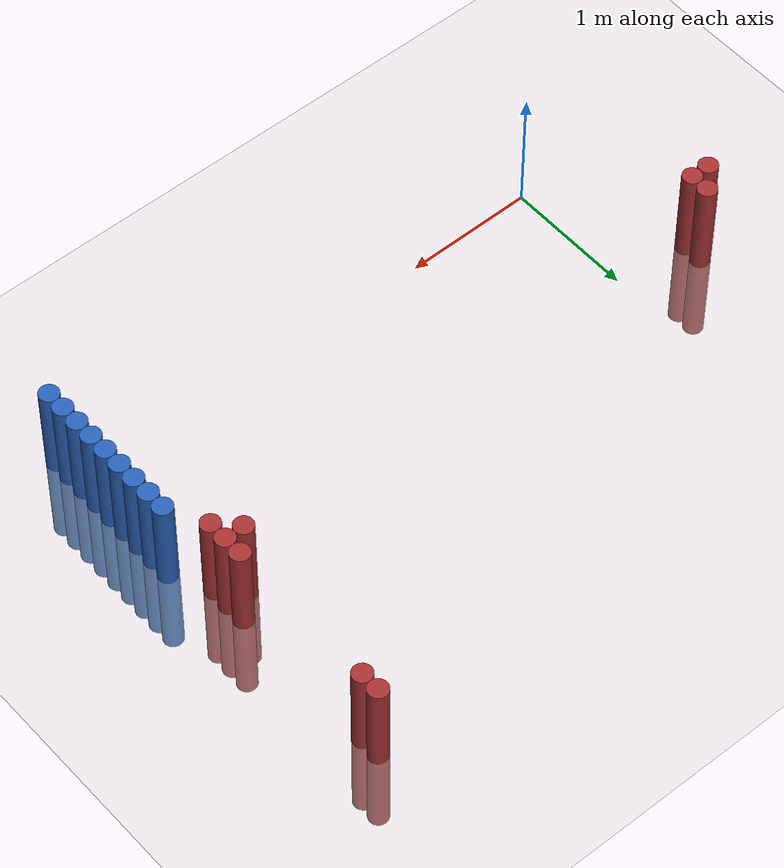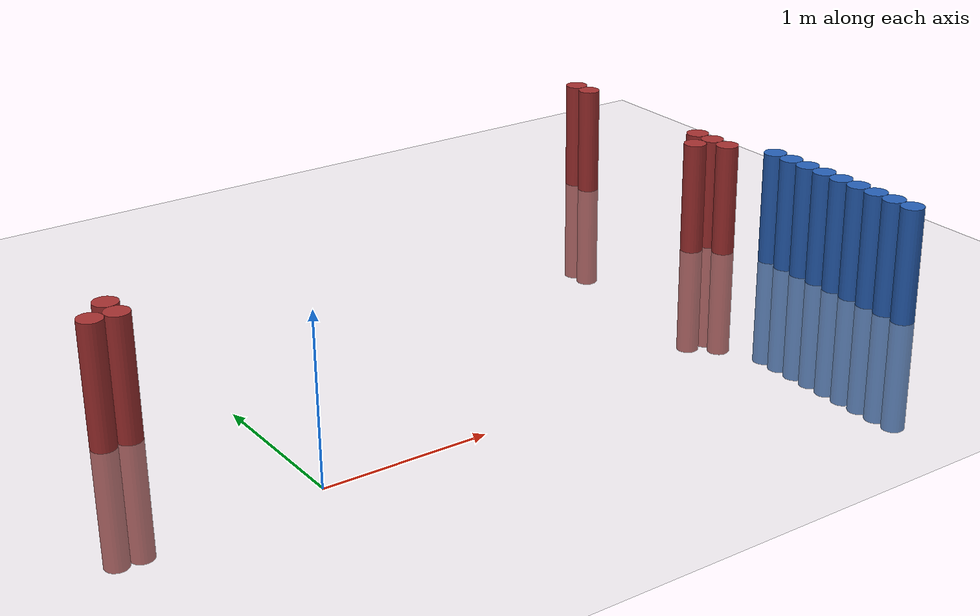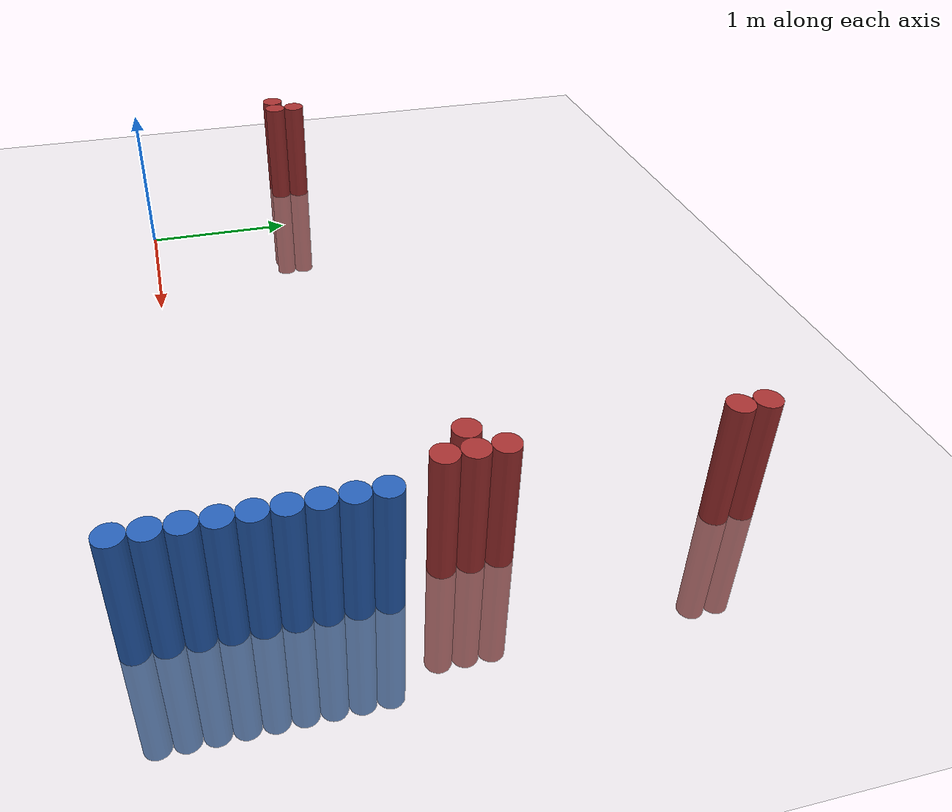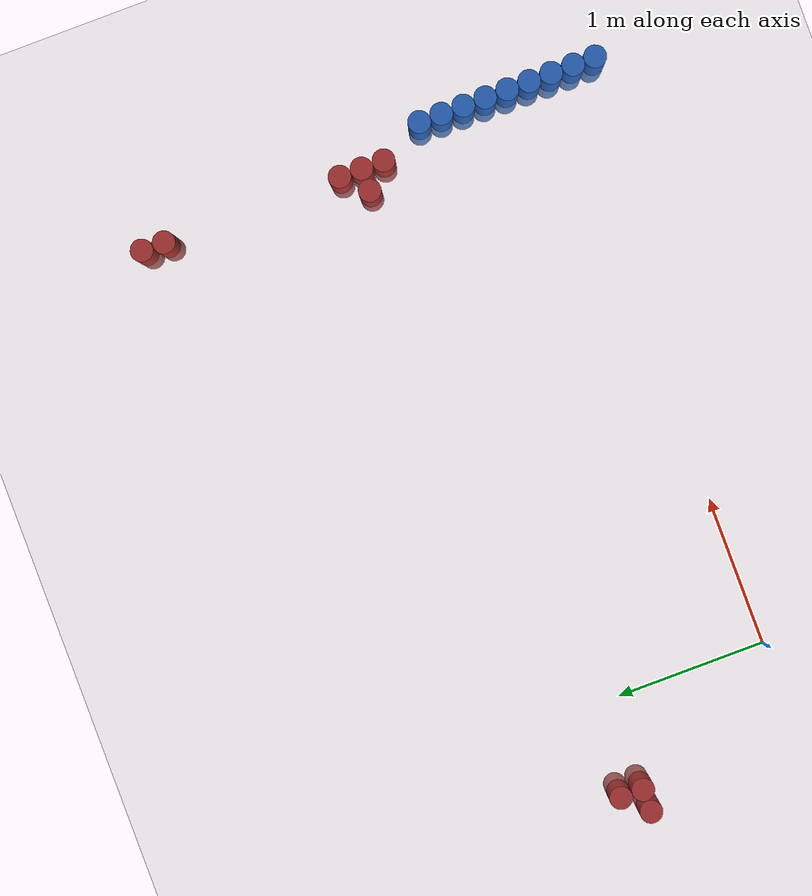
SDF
<sdf version="1.6">
 <world name="default">
  <model name="ground_plane">
   <static>1</static>
   <link name="link">
    <collision name="collision">
     <geometry><plane><normal>0 0 1</normal><size>100 100</size></plane></geometry>
     <surface><friction><ode><mu>100</mu><mu2>50</mu2></ode></friction></surface>
    </collision>
    <visual name="visual">
     <cast_shadows>0</cast_shadows>
     <geometry><plane><normal>0 0 1</normal><size>100 100</size></plane></geometry>
     <material>
      <script><uri>file://media/materials/scripts/gazebo.material</uri><name>Gazebo/Grey</name></script>
     </material>
    </visual>
   </link>
  </model>
  <model name="unit_cylinder_112">
   <static>1</static>
   <pose>3.925000 -0.125000 0.000000 0.000000 0.000000 0.000000</pose>
   <link name="link">
    <inertial>
     <mass>1</mass>
     <inertia><ixx>0.145833</ixx><ixy>0</ixy><ixz>0</ixz><iyy>0.145833</iyy><iyz>0</iyz><izz>0.125</izz></inertia>
    </inertial>
    <collision name="collision">
     <geometry><cylinder><radius>0.075000</radius><length>1.5</length></cylinder></geometry>
    </collision>
    <visual name="visual">
     <geometry><cylinder><radius>0.075000</radius><length>1.5</length></cylinder></geometry>
     <material>
      <ambient>0.152000 0.379000 0.720000 1</ambient>
      <diffuse>0.152000 0.379000 0.720000 1</diffuse>
     </material>
     <material>
      <script><name>Gazebo/Grey</name><uri>file://media/materials/scripts/gazebo.material</uri></script>
     </material>
    </visual>
   </link>
  </model>
  <model name="unit_cylinder_114">
   <static>1</static>
   <pose>3.925000 0.025000 0.000000 0.000000 0.000000 0.000000</pose>
   <link name="link">
    <inertial>
     <mass>1</mass>
     <inertia><ixx>0.145833</ixx><ixy>0</ixy><ixz>0</ixz><iyy>0.145833</iyy><iyz>0</iyz><izz>0.125</izz></inertia>
    </inertial>
    <collision name="collision">
     <geometry><cylinder><radius>0.075000</radius><length>1.5</length></cylinder></geometry>
    </collision>
    <visual name="visual">
     <geometry><cylinder><radius>0.075000</radius><length>1.5</length></cylinder></geometry>
     <material>
      <ambient>0.152000 0.379000 0.720000 1</ambient>
      <diffuse>0.152000 0.379000 0.720000 1</diffuse>
     </material>
     <material>
      <script><name>Gazebo/Grey</name><uri>file://media/materials/scripts/gazebo.material</uri></script>
     </material>
    </visual>
   </link>
  </model>
  <model name="unit_cylinder_116">
   <static>1</static>
   <pose>3.925000 0.175000 0.000000 0.000000 0.000000 0.000000</pose>
   <link name="link">
    <inertial>
     <mass>1</mass>
     <inertia><ixx>0.145833</ixx><ixy>0</ixy><ixz>0</ixz><iyy>0.145833</iyy><iyz>0</iyz><izz>0.125</izz></inertia>
    </inertial>
    <collision name="collision">
     <geometry><cylinder><radius>0.075000</radius><length>1.5</length></cylinder></geometry>
    </collision>
    <visual name="visual">
     <geometry><cylinder><radius>0.075000</radius><length>1.5</length></cylinder></geometry>
     <material>
      <ambient>0.152000 0.379000 0.720000 1</ambient>
      <diffuse>0.152000 0.379000 0.720000 1</diffuse>
     </material>
     <material>
      <script><name>Gazebo/Grey</name><uri>file://media/materials/scripts/gazebo.material</uri></script>
     </material>
    </visual>
   </link>
  </model>
  <model name="unit_cylinder_118">
   <static>1</static>
   <pose>3.925000 0.325000 0.000000 0.000000 0.000000 0.000000</pose>
   <link name="link">
    <inertial>
     <mass>1</mass>
     <inertia><ixx>0.145833</ixx><ixy>0</ixy><ixz>0</ixz><iyy>0.145833</iyy><iyz>0</iyz><izz>0.125</izz></inertia>
    </inertial>
    <collision name="collision">
     <geometry><cylinder><radius>0.075000</radius><length>1.5</length></cylinder></geometry>
    </collision>
    <visual name="visual">
     <geometry><cylinder><radius>0.075000</radius><length>1.5</length></cylinder></geometry>
     <material>
      <ambient>0.152000 0.379000 0.720000 1</ambient>
      <diffuse>0.152000 0.379000 0.720000 1</diffuse>
     </material>
     <material>
      <script><name>Gazebo/Grey</name><uri>file://media/materials/scripts/gazebo.material</uri></script>
     </material>
    </visual>
   </link>
  </model>
  <model name="unit_cylinder_120">
   <static>1</static>
   <pose>3.925000 0.475000 0.000000 0.000000 0.000000 0.000000</pose>
   <link name="link">
    <inertial>
     <mass>1</mass>
     <inertia><ixx>0.145833</ixx><ixy>0</ixy><ixz>0</ixz><iyy>0.145833</iyy><iyz>0</iyz><izz>0.125</izz></inertia>
    </inertial>
    <collision name="collision">
     <geometry><cylinder><radius>0.075000</radius><length>1.5</length></cylinder></geometry>
    </collision>
    <visual name="visual">
     <geometry><cylinder><radius>0.075000</radius><length>1.5</length></cylinder></geometry>
     <material>
      <ambient>0.152000 0.379000 0.720000 1</ambient>
      <diffuse>0.152000 0.379000 0.720000 1</diffuse>
     </material>
     <material>
      <script><name>Gazebo/Grey</name><uri>file://media/materials/scripts/gazebo.material</uri></script>
     </material>
    </visual>
   </link>
  </model>
  <model name="unit_cylinder_122">
   <static>1</static>
   <pose>3.925000 0.625000 0.000000 0.000000 0.000000 0.000000</pose>
   <link name="link">
    <inertial>
     <mass>1</mass>
     <inertia><ixx>0.145833</ixx><ixy>0</ixy><ixz>0</ixz><iyy>0.145833</iyy><iyz>0</iyz><izz>0.125</izz></inertia>
    </inertial>
    <collision name="collision">
     <geometry><cylinder><radius>0.075000</radius><length>1.5</length></cylinder></geometry>
    </collision>
    <visual name="visual">
     <geometry><cylinder><radius>0.075000</radius><length>1.5</length></cylinder></geometry>
     <material>
      <ambient>0.152000 0.379000 0.720000 1</ambient>
      <diffuse>0.152000 0.379000 0.720000 1</diffuse>
     </material>
     <material>
      <script><name>Gazebo/Grey</name><uri>file://media/materials/scripts/gazebo.material</uri></script>
     </material>
    </visual>
   </link>
  </model>
  <model name="unit_cylinder_124">
   <static>1</static>
   <pose>3.925000 0.775000 0.000000 0.000000 0.000000 0.000000</pose>
   <link name="link">
    <inertial>
     <mass>1</mass>
     <inertia><ixx>0.145833</ixx><ixy>0</ixy><ixz>0</ixz><iyy>0.145833</iyy><iyz>0</iyz><izz>0.125</izz></inertia>
    </inertial>
    <collision name="collision">
     <geometry><cylinder><radius>0.075000</radius><length>1.5</length></cylinder></geometry>
    </collision>
    <visual name="visual">
     <geometry><cylinder><radius>0.075000</radius><length>1.5</length></cylinder></geometry>
     <material>
      <ambient>0.152000 0.379000 0.720000 1</ambient>
      <diffuse>0.152000 0.379000 0.720000 1</diffuse>
     </material>
     <material>
      <script><name>Gazebo/Grey</name><uri>file://media/materials/scripts/gazebo.material</uri></script>
     </material>
    </visual>
   </link>
  </model>
  <model name="unit_cylinder_126">
   <static>1</static>
   <pose>3.925000 0.925000 0.000000 0.000000 0.000000 0.000000</pose>
   <link name="link">
    <inertial>
     <mass>1</mass>
     <inertia><ixx>0.145833</ixx><ixy>0</ixy><ixz>0</ixz><iyy>0.145833</iyy><iyz>0</iyz><izz>0.125</izz></inertia>
    </inertial>
    <collision name="collision">
     <geometry><cylinder><radius>0.075000</radius><length>1.5</length></cylinder></geometry>
    </collision>
    <visual name="visual">
     <geometry><cylinder><radius>0.075000</radius><length>1.5</length></cylinder></geometry>
     <material>
      <ambient>0.152000 0.379000 0.720000 1</ambient>
      <diffuse>0.152000 0.379000 0.720000 1</diffuse>
     </material>
     <material>
      <script><name>Gazebo/Grey</name><uri>file://media/materials/scripts/gazebo.material</uri></script>
     </material>
    </visual>
   </link>
  </model>
  <model name="unit_cylinder_280">
   <static>1</static>
   <pose>-0.725000 1.075000 0.000000 0.000000 0.000000 0.000000</pose>
   <link name="link">
    <inertial>
     <mass>1</mass>
     <inertia><ixx>0.145833</ixx><ixy>0</ixy><ixz>0</ixz><iyy>0.145833</iyy><iyz>0</iyz><izz>0.125</izz></inertia>
    </inertial>
    <collision name="collision">
     <geometry><cylinder><radius>0.075000</radius><length>1.5</length></cylinder></geometry>
    </collision>
    <visual name="visual">
     <geometry><cylinder><radius>0.075000</radius><length>1.5</length></cylinder></geometry>
     <material>
      <ambient>0.648000 0.192000 0.192000 1</ambient>
      <diffuse>0.648000 0.192000 0.192000 1</diffuse>
     </material>
     <material>
      <script><name>Gazebo/Grey</name><uri>file://media/materials/scripts/gazebo.material</uri></script>
     </material>
    </visual>
   </link>
  </model>
  <model name="unit_cylinder_283">
   <static>1</static>
   <pose>-0.575000 1.075000 0.000000 0.000000 0.000000 0.000000</pose>
   <link name="link">
    <inertial>
     <mass>1</mass>
     <inertia><ixx>0.145833</ixx><ixy>0</ixy><ixz>0</ixz><iyy>0.145833</iyy><iyz>0</iyz><izz>0.125</izz></inertia>
    </inertial>
    <collision name="collision">
     <geometry><cylinder><radius>0.075000</radius><length>1.5</length></cylinder></geometry>
    </collision>
    <visual name="visual">
     <geometry><cylinder><radius>0.075000</radius><length>1.5</length></cylinder></geometry>
     <material>
      <ambient>0.648000 0.192000 0.192000 1</ambient>
      <diffuse>0.648000 0.192000 0.192000 1</diffuse>
     </material>
     <material>
      <script><name>Gazebo/Grey</name><uri>file://media/materials/scripts/gazebo.material</uri></script>
     </material>
    </visual>
   </link>
  </model>
  <model name="unit_cylinder_284">
   <static>1</static>
   <pose>-0.575000 1.225000 0.000000 0.000000 0.000000 0.000000</pose>
   <link name="link">
    <inertial>
     <mass>1</mass>
     <inertia><ixx>0.145833</ixx><ixy>0</ixy><ixz>0</ixz><iyy>0.145833</iyy><iyz>0</iyz><izz>0.125</izz></inertia>
    </inertial>
    <collision name="collision">
     <geometry><cylinder><radius>0.075000</radius><length>1.5</length></cylinder></geometry>
    </collision>
    <visual name="visual">
     <geometry><cylinder><radius>0.075000</radius><length>1.5</length></cylinder></geometry>
     <material>
      <ambient>0.648000 0.192000 0.192000 1</ambient>
      <diffuse>0.648000 0.192000 0.192000 1</diffuse>
     </material>
     <material>
      <script><name>Gazebo/Grey</name><uri>file://media/materials/scripts/gazebo.material</uri></script>
     </material>
    </visual>
   </link>
  </model>
  <model name="unit_cylinder_299">
   <static>1</static>
   <pose>3.625000 1.375000 0.000000 0.000000 0.000000 0.000000</pose>
   <link name="link">
    <inertial>
     <mass>1</mass>
     <inertia><ixx>0.145833</ixx><ixy>0</ixy><ixz>0</ixz><iyy>0.145833</iyy><iyz>0</iyz><izz>0.125</izz></inertia>
    </inertial>
    <collision name="collision">
     <geometry><cylinder><radius>0.075000</radius><length>1.5</length></cylinder></geometry>
    </collision>
    <visual name="visual">
     <geometry><cylinder><radius>0.075000</radius><length>1.5</length></cylinder></geometry>
     <material>
      <ambient>0.648000 0.192000 0.192000 1</ambient>
      <diffuse>0.648000 0.192000 0.192000 1</diffuse>
     </material>
     <material>
      <script><name>Gazebo/Grey</name><uri>file://media/materials/scripts/gazebo.material</uri></script>
     </material>
    </visual>
   </link>
  </model>
  <model name="unit_cylinder_306">
   <static>1</static>
   <pose>3.775000 1.225000 0.000000 0.000000 0.000000 0.000000</pose>
   <link name="link">
    <inertial>
     <mass>1</mass>
     <inertia><ixx>0.145833</ixx><ixy>0</ixy><ixz>0</ixz><iyy>0.145833</iyy><iyz>0</iyz><izz>0.125</izz></inertia>
    </inertial>
    <collision name="collision">
     <geometry><cylinder><radius>0.075000</radius><length>1.5</length></cylinder></geometry>
    </collision>
    <visual name="visual">
     <geometry><cylinder><radius>0.075000</radius><length>1.5</length></cylinder></geometry>
     <material>
      <ambient>0.648000 0.192000 0.192000 1</ambient>
      <diffuse>0.648000 0.192000 0.192000 1</diffuse>
     </material>
     <material>
      <script><name>Gazebo/Grey</name><uri>file://media/materials/scripts/gazebo.material</uri></script>
     </material>
    </visual>
   </link>
  </model>
  <model name="unit_cylinder_307">
   <static>1</static>
   <pose>3.775000 1.375000 0.000000 0.000000 0.000000 0.000000</pose>
   <link name="link">
    <inertial>
     <mass>1</mass>
     <inertia><ixx>0.145833</ixx><ixy>0</ixy><ixz>0</ixz><iyy>0.145833</iyy><iyz>0</iyz><izz>0.125</izz></inertia>
    </inertial>
    <collision name="collision">
     <geometry><cylinder><radius>0.075000</radius><length>1.5</length></cylinder></geometry>
    </collision>
    <visual name="visual">
     <geometry><cylinder><radius>0.075000</radius><length>1.5</length></cylinder></geometry>
     <material>
      <ambient>0.648000 0.192000 0.192000 1</ambient>
      <diffuse>0.648000 0.192000 0.192000 1</diffuse>
     </material>
     <material>
      <script><name>Gazebo/Grey</name><uri>file://media/materials/scripts/gazebo.material</uri></script>
     </material>
    </visual>
   </link>
  </model>
  <model name="unit_cylinder_308">
   <static>1</static>
   <pose>3.775000 1.525000 0.000000 0.000000 0.000000 0.000000</pose>
   <link name="link">
    <inertial>
     <mass>1</mass>
     <inertia><ixx>0.145833</ixx><ixy>0</ixy><ixz>0</ixz><iyy>0.145833</iyy><iyz>0</iyz><izz>0.125</izz></inertia>
    </inertial>
    <collision name="collision">
     <geometry><cylinder><radius>0.075000</radius><length>1.5</length></cylinder></geometry>
    </collision>
    <visual name="visual">
     <geometry><cylinder><radius>0.075000</radius><length>1.5</length></cylinder></geometry>
     <material>
      <ambient>0.648000 0.192000 0.192000 1</ambient>
      <diffuse>0.648000 0.192000 0.192000 1</diffuse>
     </material>
     <material>
      <script><name>Gazebo/Grey</name><uri>file://media/materials/scripts/gazebo.material</uri></script>
     </material>
    </visual>
   </link>
  </model>
  <model name="unit_cylinder_309">
   <static>1</static>
   <pose>3.775000 2.725000 0.000000 0.000000 0.000000 0.000000</pose>
   <link name="link">
    <inertial>
     <mass>1</mass>
     <inertia><ixx>0.145833</ixx><ixy>0</ixy><ixz>0</ixz><iyy>0.145833</iyy><iyz>0</iyz><izz>0.125</izz></inertia>
    </inertial>
    <collision name="collision">
     <geometry><cylinder><radius>0.075000</radius><length>1.5</length></cylinder></geometry>
    </collision>
    <visual name="visual">
     <geometry><cylinder><radius>0.075000</radius><length>1.5</length></cylinder></geometry>
     <material>
      <ambient>0.648000 0.192000 0.192000 1</ambient>
      <diffuse>0.648000 0.192000 0.192000 1</diffuse>
     </material>
     <material>
      <script><name>Gazebo/Grey</name><uri>file://media/materials/scripts/gazebo.material</uri></script>
     </material>
    </visual>
   </link>
  </model>
  <model name="unit_cylinder_310">
   <static>1</static>
   <pose>3.775000 2.875000 0.000000 0.000000 0.000000 0.000000</pose>
   <link name="link">
    <inertial>
     <mass>1</mass>
     <inertia><ixx>0.145833</ixx><ixy>0</ixy><ixz>0</ixz><iyy>0.145833</iyy><iyz>0</iyz><izz>0.125</izz></inertia>
    </inertial>
    <collision name="collision">
     <geometry><cylinder><radius>0.075000</radius><length>1.5</length></cylinder></geometry>
    </collision>
    <visual name="visual">
     <geometry><cylinder><radius>0.075000</radius><length>1.5</length></cylinder></geometry>
     <material>
      <ambient>0.648000 0.192000 0.192000 1</ambient>
      <diffuse>0.648000 0.192000 0.192000 1</diffuse>
     </material>
     <material>
      <script><name>Gazebo/Grey</name><uri>file://media/materials/scripts/gazebo.material</uri></script>
     </material>
    </visual>
   </link>
  </model>
  <model name="unit_cylinder_327">
   <static>1</static>
   <pose>3.925000 -0.275000 0.000000 0.000000 0.000000 0.000000</pose>
   <link name="link">
    <inertial>
     <mass>1</mass>
     <inertia><ixx>0.145833</ixx><ixy>0</ixy><ixz>0</ixz><iyy>0.145833</iyy><iyz>0</iyz><izz>0.125</izz></inertia>
    </inertial>
    <collision name="collision">
     <geometry><cylinder><radius>0.075000</radius><length>1.5</length></cylinder></geometry>
    </collision>
    <visual name="visual">
     <geometry><cylinder><radius>0.075000</radius><length>1.5</length></cylinder></geometry>
     <material>
      <ambient>0.152000 0.379000 0.720000 1</ambient>
      <diffuse>0.152000 0.379000 0.720000 1</diffuse>
     </material>
     <material>
      <script><name>Gazebo/Grey</name><uri>file://media/materials/scripts/gazebo.material</uri></script>
     </material>
    </visual>
   </link>
  </model>
  <model name="unit_cylinder_328">
   <static>1</static>
   <pose>3.925000 -0.125000 0.000000 0.000000 0.000000 0.000000</pose>
   <link name="link">
    <inertial>
     <mass>1</mass>
     <inertia><ixx>0.145833</ixx><ixy>0</ixy><ixz>0</ixz><iyy>0.145833</iyy><iyz>0</iyz><izz>0.125</izz></inertia>
    </inertial>
    <collision name="collision">
     <geometry><cylinder><radius>0.075000</radius><length>1.5</length></cylinder></geometry>
    </collision>
    <visual name="visual">
     <geometry><cylinder><radius>0.075000</radius><length>1.5</length></cylinder></geometry>
     <material>
      <ambient>0.152000 0.379000 0.720000 1</ambient>
      <diffuse>0.152000 0.379000 0.720000 1</diffuse>
     </material>
     <material>
      <script><name>Gazebo/Grey</name><uri>file://media/materials/scripts/gazebo.material</uri></script>
     </material>
    </visual>
   </link>
  </model>
  <model name="unit_cylinder_329">
   <static>1</static>
   <pose>3.925000 0.025000 0.000000 0.000000 0.000000 0.000000</pose>
   <link name="link">
    <inertial>
     <mass>1</mass>
     <inertia><ixx>0.145833</ixx><ixy>0</ixy><ixz>0</ixz><iyy>0.145833</iyy><iyz>0</iyz><izz>0.125</izz></inertia>
    </inertial>
    <collision name="collision">
     <geometry><cylinder><radius>0.075000</radius><length>1.5</length></cylinder></geometry>
    </collision>
    <visual name="visual">
     <geometry><cylinder><radius>0.075000</radius><length>1.5</length></cylinder></geometry>
     <material>
      <ambient>0.152000 0.379000 0.720000 1</ambient>
      <diffuse>0.152000 0.379000 0.720000 1</diffuse>
     </material>
     <material>
      <script><name>Gazebo/Grey</name><uri>file://media/materials/scripts/gazebo.material</uri></script>
     </material>
    </visual>
   </link>
  </model>
  <model name="unit_cylinder_330">
   <static>1</static>
   <pose>3.925000 0.175000 0.000000 0.000000 0.000000 0.000000</pose>
   <link name="link">
    <inertial>
     <mass>1</mass>
     <inertia><ixx>0.145833</ixx><ixy>0</ixy><ixz>0</ixz><iyy>0.145833</iyy><iyz>0</iyz><izz>0.125</izz></inertia>
    </inertial>
    <collision name="collision">
     <geometry><cylinder><radius>0.075000</radius><length>1.5</length></cylinder></geometry>
    </collision>
    <visual name="visual">
     <geometry><cylinder><radius>0.075000</radius><length>1.5</length></cylinder></geometry>
     <material>
      <ambient>0.152000 0.379000 0.720000 1</ambient>
      <diffuse>0.152000 0.379000 0.720000 1</diffuse>
     </material>
     <material>
      <script><name>Gazebo/Grey</name><uri>file://media/materials/scripts/gazebo.material</uri></script>
     </material>
    </visual>
   </link>
  </model>
  <model name="unit_cylinder_331">
   <static>1</static>
   <pose>3.925000 0.325000 0.000000 0.000000 0.000000 0.000000</pose>
   <link name="link">
    <inertial>
     <mass>1</mass>
     <inertia><ixx>0.145833</ixx><ixy>0</ixy><ixz>0</ixz><iyy>0.145833</iyy><iyz>0</iyz><izz>0.125</izz></inertia>
    </inertial>
    <collision name="collision">
     <geometry><cylinder><radius>0.075000</radius><length>1.5</length></cylinder></geometry>
    </collision>
    <visual name="visual">
     <geometry><cylinder><radius>0.075000</radius><length>1.5</length></cylinder></geometry>
     <material>
      <ambient>0.152000 0.379000 0.720000 1</ambient>
      <diffuse>0.152000 0.379000 0.720000 1</diffuse>
     </material>
     <material>
      <script><name>Gazebo/Grey</name><uri>file://media/materials/scripts/gazebo.material</uri></script>
     </material>
    </visual>
   </link>
  </model>
  <model name="unit_cylinder_332">
   <static>1</static>
   <pose>3.925000 0.475000 0.000000 0.000000 0.000000 0.000000</pose>
   <link name="link">
    <inertial>
     <mass>1</mass>
     <inertia><ixx>0.145833</ixx><ixy>0</ixy><ixz>0</ixz><iyy>0.145833</iyy><iyz>0</iyz><izz>0.125</izz></inertia>
    </inertial>
    <collision name="collision">
     <geometry><cylinder><radius>0.075000</radius><length>1.5</length></cylinder></geometry>
    </collision>
    <visual name="visual">
     <geometry><cylinder><radius>0.075000</radius><length>1.5</length></cylinder></geometry>
     <material>
      <ambient>0.152000 0.379000 0.720000 1</ambient>
      <diffuse>0.152000 0.379000 0.720000 1</diffuse>
     </material>
     <material>
      <script><name>Gazebo/Grey</name><uri>file://media/materials/scripts/gazebo.material</uri></script>
     </material>
    </visual>
   </link>
  </model>
  <model name="unit_cylinder_333">
   <static>1</static>
   <pose>3.925000 0.625000 0.000000 0.000000 0.000000 0.000000</pose>
   <link name="link">
    <inertial>
     <mass>1</mass>
     <inertia><ixx>0.145833</ixx><ixy>0</ixy><ixz>0</ixz><iyy>0.145833</iyy><iyz>0</iyz><izz>0.125</izz></inertia>
    </inertial>
    <collision name="collision">
     <geometry><cylinder><radius>0.075000</radius><length>1.5</length></cylinder></geometry>
    </collision>
    <visual name="visual">
     <geometry><cylinder><radius>0.075000</radius><length>1.5</length></cylinder></geometry>
     <material>
      <ambient>0.152000 0.379000 0.720000 1</ambient>
      <diffuse>0.152000 0.379000 0.720000 1</diffuse>
     </material>
     <material>
      <script><name>Gazebo/Grey</name><uri>file://media/materials/scripts/gazebo.material</uri></script>
     </material>
    </visual>
   </link>
  </model>
  <model name="unit_cylinder_334">
   <static>1</static>
   <pose>3.925000 0.775000 0.000000 0.000000 0.000000 0.000000</pose>
   <link name="link">
    <inertial>
     <mass>1</mass>
     <inertia><ixx>0.145833</ixx><ixy>0</ixy><ixz>0</ixz><iyy>0.145833</iyy><iyz>0</iyz><izz>0.125</izz></inertia>
    </inertial>
    <collision name="collision">
     <geometry><cylinder><radius>0.075000</radius><length>1.5</length></cylinder></geometry>
    </collision>
    <visual name="visual">
     <geometry><cylinder><radius>0.075000</radius><length>1.5</length></cylinder></geometry>
     <material>
      <ambient>0.152000 0.379000 0.720000 1</ambient>
      <diffuse>0.152000 0.379000 0.720000 1</diffuse>
     </material>
     <material>
      <script><name>Gazebo/Grey</name><uri>file://media/materials/scripts/gazebo.material</uri></script>
     </material>
    </visual>
   </link>
  </model>
  <model name="unit_cylinder_335">
   <static>1</static>
   <pose>3.925000 0.925000 0.000000 0.000000 0.000000 0.000000</pose>
   <link name="link">
    <inertial>
     <mass>1</mass>
     <inertia><ixx>0.145833</ixx><ixy>0</ixy><ixz>0</ixz><iyy>0.145833</iyy><iyz>0</iyz><izz>0.125</izz></inertia>
    </inertial>
    <collision name="collision">
     <geometry><cylinder><radius>0.075000</radius><length>1.5</length></cylinder></geometry>
    </collision>
    <visual name="visual">
     <geometry><cylinder><radius>0.075000</radius><length>1.5</length></cylinder></geometry>
     <material>
      <ambient>0.152000 0.379000 0.720000 1</ambient>
      <diffuse>0.152000 0.379000 0.720000 1</diffuse>
     </material>
     <material>
      <script><name>Gazebo/Grey</name><uri>file://media/materials/scripts/gazebo.material</uri></script>
     </material>
    </visual>
   </link>
  </model>
 </world>
</sdf>
